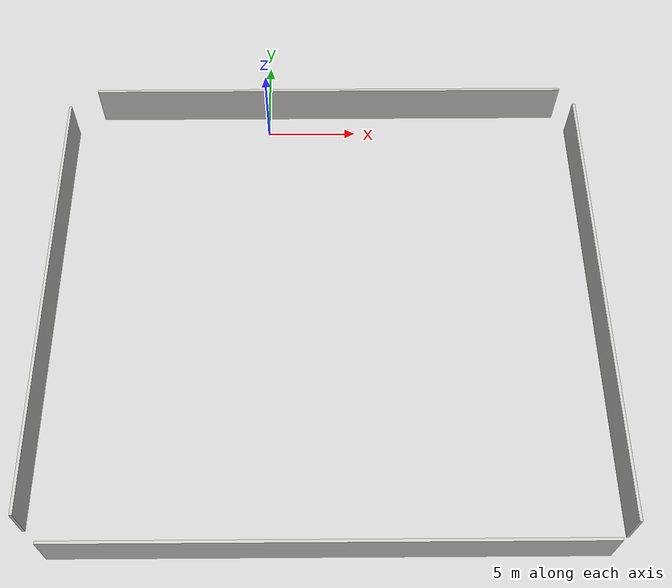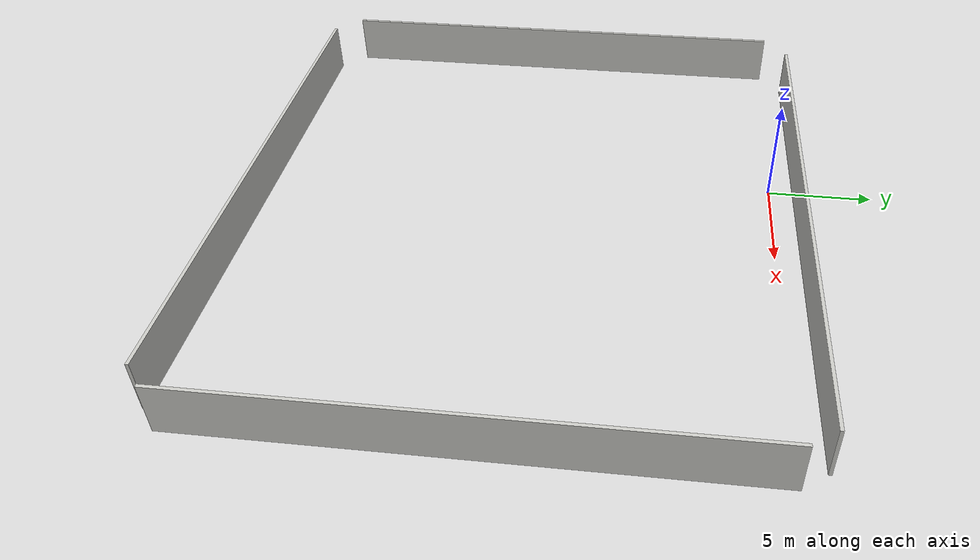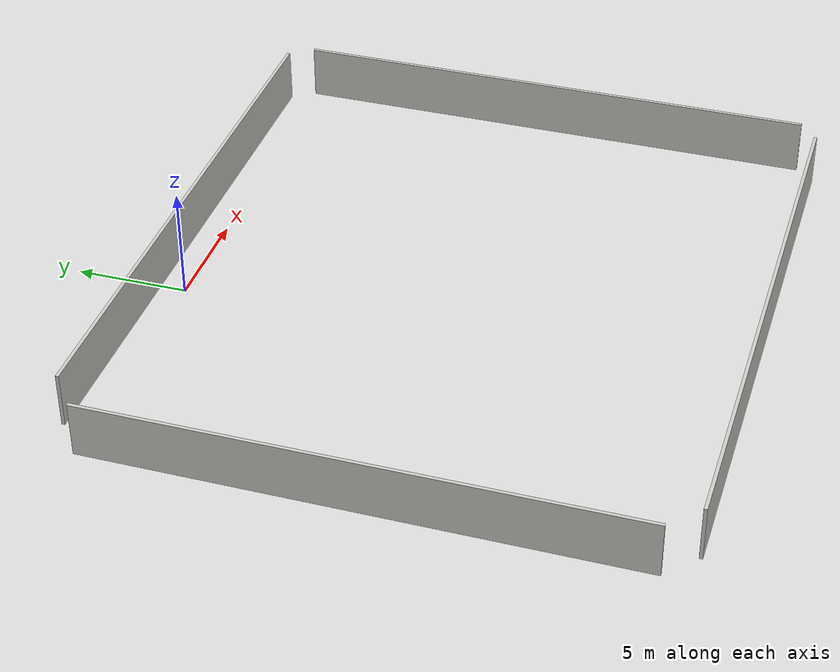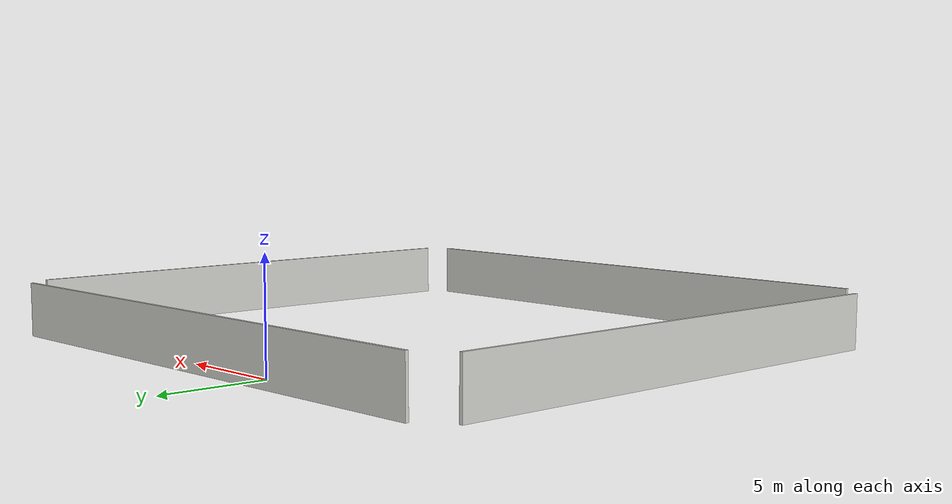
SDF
<?xml version='1.0'?>
<sdf version='1.7'>
  <model name='bot_world'>
    <pose>3.11346 -11.826 0 0 -0 0</pose>
    <link name='Wall_1'>
      <collision name='Wall_1_Collision'>
        <geometry>
          <box>
            <size>26.5 0.15 2.5</size>
          </box>
        </geometry>
        <pose>0 0 1.25 0 -0 0</pose>
      </collision>
      <visual name='Wall_1_Visual'>
        <pose>0 0 1.25 0 -0 0</pose>
        <geometry>
          <box>
            <size>26.5 0.15 2.5</size>
          </box>
        </geometry>
        <material>
          <script>
            <uri>file://media/materials/scripts/gazebo.material</uri>
            <name>Gazebo/CeilingTiled</name>
          </script>
          <ambient>1 1 1 1</ambient>
        </material>
        <meta>
          <layer>0</layer>
        </meta>
      </visual>
      <pose>0.370484 13.067 0 0 -0 0</pose>
    </link>
    <link name='Wall_4'>
      <collision name='Wall_4_Collision'>
        <geometry>
          <box>
            <size>23.75 0.15 2.5</size>
          </box>
        </geometry>
        <pose>0 0 1.25 0 -0 0</pose>
      </collision>
      <visual name='Wall_4_Visual'>
        <pose>0 0 1.25 0 -0 0</pose>
        <geometry>
          <box>
            <size>23.75 0.15 2.5</size>
          </box>
        </geometry>
        <material>
          <script>
            <uri>file://media/materials/scripts/gazebo.material</uri>
            <name>Gazebo/CeilingTiled</name>
          </script>
          <ambient>1 1 1 1</ambient>
        </material>
        <meta>
          <layer>0</layer>
        </meta>
      </visual>
      <pose>-14.3333 0.058185 0 0 -0 -1.5708</pose>
    </link>
    <link name='Wall_6'>
      <collision name='Wall_6_Collision'>
        <geometry>
          <box>
            <size>26.5 0.15 2.5</size>
          </box>
        </geometry>
        <pose>0 0 1.25 0 -0 0</pose>
      </collision>
      <visual name='Wall_6_Visual'>
        <pose>0 0 1.25 0 -0 0</pose>
        <geometry>
          <box>
            <size>26.5 0.15 2.5</size>
          </box>
        </geometry>
        <material>
          <script>
            <uri>file://media/materials/scripts/gazebo.material</uri>
            <name>Gazebo/CeilingTiled</name>
          </script>
          <ambient>1 1 1 1</ambient>
        </material>
        <meta>
          <layer>0</layer>
        </meta>
      </visual>
      <pose>0.158501 -13.067 0 0 -0 0</pose>
    </link>
    <link name='Wall_8'>
      <collision name='Wall_8_Collision'>
        <geometry>
          <box>
            <size>24.25 0.15 2.5</size>
          </box>
        </geometry>
        <pose>0 0 1.25 0 -0 0</pose>
      </collision>
      <visual name='Wall_8_Visual'>
        <pose>0 0 1.25 0 -0 0</pose>
        <geometry>
          <box>
            <size>24.25 0.15 2.5</size>
          </box>
        </geometry>
        <material>
          <script>
            <uri>file://media/materials/scripts/gazebo.material</uri>
            <name>Gazebo/CeilingTiled</name>
          </script>
          <ambient>1 1 1 1</ambient>
        </material>
        <meta>
          <layer>0</layer>
        </meta>
      </visual>
      <pose>14.3333 -0.150732 0 0 -0 1.5708</pose>
    </link>
    <static>1</static>
  </model>
</sdf>
